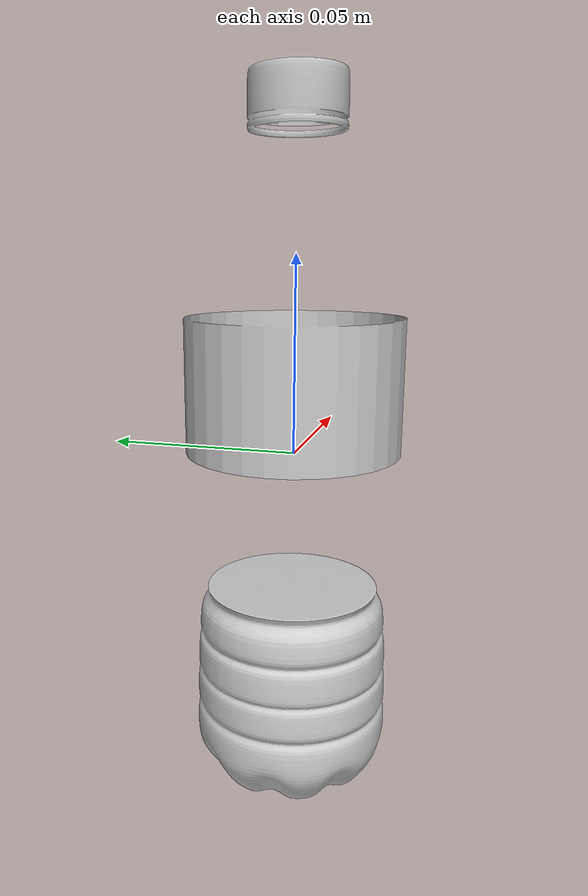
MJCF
<?xml version='1.0' encoding='utf-8'?>
<mujoco model="bottled_water_19">
  <asset>
    <mesh file="visual/model_normalized_0.obj" name="model_normalized_0_vis" scale="0.181818 0.181818 0.181818" refquat="0.49999999999999956 -0.4999999999999996 -0.49999999999999956 -0.49999999999999956" />
    <mesh file="visual/model_normalized_1.obj" name="model_normalized_1_vis" scale="0.181818 0.181818 0.181818" refquat="0.49999999999999956 -0.4999999999999996 -0.49999999999999956 -0.49999999999999956" />
    <mesh file="visual/model_normalized_2.obj" name="model_normalized_2_vis" scale="0.181818 0.181818 0.181818" refquat="0.49999999999999956 -0.4999999999999996 -0.49999999999999956 -0.49999999999999956" />
    <mesh file="visual/model_normalized_3.obj" name="model_normalized_3_vis" scale="0.181818 0.181818 0.181818" refquat="0.49999999999999956 -0.4999999999999996 -0.49999999999999956 -0.49999999999999956" />
    <material name="Plastic_transparent" specular="0.5" shininess="0.359999993" rgba="0.800000 0.800000 0.800000 1.0" />
    <material name="label" specular="0.5" shininess="0.359999993" rgba="0.800000 0.800000 0.800000 1.0" />
    <material name="plastic_blue" specular="0.5" shininess="0.359999993" rgba="0.800000 0.800000 0.800000 1.0" />
    <material name="water" specular="0.5" shininess="0.359999993" rgba="0.800000 0.800000 0.800000 1.0" />
    <mesh file="collision/collision_mesh_collision_0.obj" name="bottled_collision_mesh_0" scale="0.181818 0.181818 0.181818" refquat="0.49999999999999956 -0.4999999999999996 -0.49999999999999956 -0.49999999999999956" />
    <mesh file="collision/collision_mesh_collision_1.obj" name="bottled_collision_mesh_1" scale="0.181818 0.181818 0.181818" refquat="0.49999999999999956 -0.4999999999999996 -0.49999999999999956 -0.49999999999999956" />
    <mesh file="collision/collision_mesh_collision_2.obj" name="bottled_collision_mesh_2" scale="0.181818 0.181818 0.181818" refquat="0.49999999999999956 -0.4999999999999996 -0.49999999999999956 -0.49999999999999956" />
    <mesh file="collision/collision_mesh_collision_3.obj" name="bottled_collision_mesh_3" scale="0.181818 0.181818 0.181818" refquat="0.49999999999999956 -0.4999999999999996 -0.49999999999999956 -0.49999999999999956" />
    <mesh file="collision/collision_mesh_collision_4.obj" name="bottled_collision_mesh_4" scale="0.181818 0.181818 0.181818" refquat="0.49999999999999956 -0.4999999999999996 -0.49999999999999956 -0.49999999999999956" />
    <mesh file="collision/collision_mesh_collision_5.obj" name="bottled_collision_mesh_5" scale="0.181818 0.181818 0.181818" refquat="0.49999999999999956 -0.4999999999999996 -0.49999999999999956 -0.49999999999999956" />
    <mesh file="collision/collision_mesh_collision_6.obj" name="bottled_collision_mesh_6" scale="0.181818 0.181818 0.181818" refquat="0.49999999999999956 -0.4999999999999996 -0.49999999999999956 -0.49999999999999956" />
    </asset>
  <default>
    <default class="region">
      <geom group="1" conaffinity="0" contype="0" rgba="0 1 0 0" />
      </default>
    <default class="collision">
      <geom group="3" rgba="0.5 0 0 0.5" density="1000.0" />
      </default>
    </default>
  <worldbody>
    <body>
      <body name="object">
        <geom density="100" friction="0.95 0.3 0.1" type="mesh" mesh="model_normalized_0_vis" conaffinity="0" contype="0" group="1" material="water" />
        <geom density="100" friction="0.95 0.3 0.1" type="mesh" mesh="model_normalized_1_vis" conaffinity="0" contype="0" group="1" material="label" />
        <geom density="100" friction="0.95 0.3 0.1" type="mesh" mesh="model_normalized_2_vis" conaffinity="0" contype="0" group="1" material="plastic_blue" />
        <geom density="100" friction="0.95 0.3 0.1" type="mesh" mesh="model_normalized_3_vis" conaffinity="0" contype="0" group="1" material="Plastic_transparent" />
        <geom class="region" name="reg_bbox" type="box" pos="-0.00012888604910400587 -0.00043104728413461064 0.00010846469240905626" size="0.02143449180361828 0.02115398128046492 0.07488805238794294" />
        <geom mesh="bottled_collision_mesh_0" type="mesh" class="collision"  solref="0.004 1" solimp="0.998 0.998 0.001"/>
        <geom mesh="bottled_collision_mesh_1" type="mesh" class="collision"  solref="0.004 1" solimp="0.998 0.998 0.001"/>
        <geom mesh="bottled_collision_mesh_2" type="mesh" class="collision"  solref="0.004 1" solimp="0.998 0.998 0.001"/>
        <geom mesh="bottled_collision_mesh_3" type="mesh" class="collision"  solref="0.004 1" solimp="0.998 0.998 0.001"/>
        <geom mesh="bottled_collision_mesh_4" type="mesh" class="collision"  solref="0.004 1" solimp="0.998 0.998 0.001"/>
        <geom mesh="bottled_collision_mesh_5" type="mesh" class="collision"  solref="0.004 1" solimp="0.998 0.998 0.001"/>
        <geom mesh="bottled_collision_mesh_6" type="mesh" class="collision"  solref="0.004 1" solimp="0.998 0.998 0.001"/>
        </body>
      </body>
    </worldbody>
  </mujoco>
